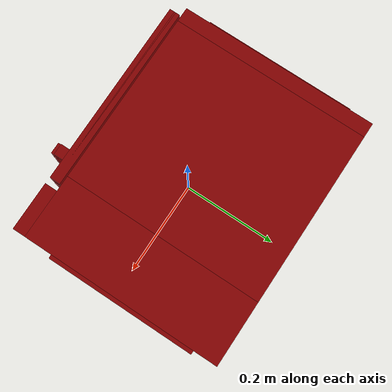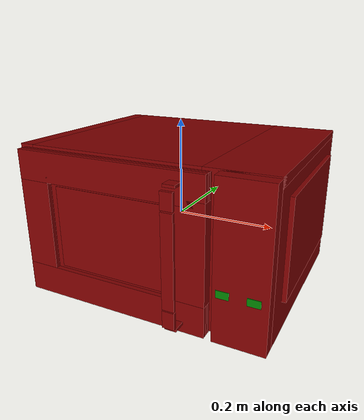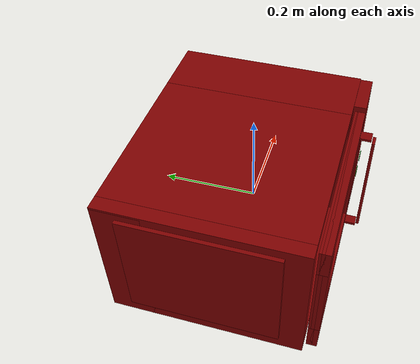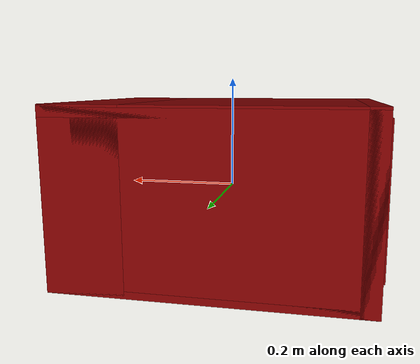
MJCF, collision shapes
<?xml version='1.0' encoding='UTF-8'?>
<mujoco model="model">
  <option timestep="0.002" gravity="0.0 0.0 -9.81"/>
  <compiler angle="radian"/>
  <asset>
    <mesh file="visuals/door.obj" name="door_vis"/>
    <mesh file="visuals/door_Clear.obj" name="door_Clear_vis"/>
    <mesh file="visuals/Body001.obj" name="Body001_vis"/>
    <mesh file="visuals/Disc001.obj" name="Disc001_vis"/>
    <texture file="visuals/T_BC001.png" name="Body001_material" type="2d"/>
    <material name="Body001_material" rgba="1 1 1 1.0" texture="Body001_material" shininess="0.2512328028678894" specular="2"/>
    <texture file="visuals/T_BC001.png" name="door_material" type="2d"/>
    <material name="door_material" rgba="1 1 1 1.0" texture="door_material" shininess="0.2512328028678894" specular="2"/>
    <texture file="visuals/T_BC001.png" name="door_Clear_material" type="2d"/>
    <material name="door_Clear_material" rgba="1 1 1 0.7292817831039429" texture="door_Clear_material" shininess="0.2512328028678894" specular="0.3103448502657381"/>
    <texture file="visuals/T_BC001.png" name="Disc001_material" type="2d"/>
    <material name="Disc001_material" rgba="1 1 1 1.0" texture="Disc001_material" shininess="0.2512328028678894" specular="1"/>
  </asset>
  <default>
    <default class="visual">
      <geom conaffinity="0" contype="0" group="1" type="mesh"/>
    </default>
    <default class="collision">
      <geom group="0" rgba="0.5 0 0 0.5"/>
    </default>
    <default class="spawn">
      <geom group="0" rgba="1 1 1 0.5" contype="0" conaffinity="0"/>
      <site group="0" rgba="1 1 1 0.5"/>
    </default>
    <default class="region">
      <geom group="1" conaffinity="0" contype="0" rgba="0 1 0 0"/>
    </default>
  </default>
  <worldbody>
    <body>
      <body name="object">
        <geom class="collision" type="box" pos="0.23700867593288422 -0.20612648129463196 -0.045173775404691696" size="0.01207912340760231 0.0005944836302660406 0.007133855484426022" quat="1.0 0.0 0.0 0.0" name="start_button" rgba="0.0 0.5 0 0.5"/>
        <geom class="collision" type="cylinder" pos="-0.050537459552288055 -0.025592748075723648 -0.1250721514225006" size="0.12531179189682007 0.0014801864745095372" quat="1.0 0.0 0.0 0.0" name="tray" rgba="0 1 0 0.5"/>
        <geom class="collision" type="box" pos="0.18167409300804138 -0.20612648129463196 -0.045173775404691696" size="0.012079129926860332 0.000594484037719667 0.007133858744055033" quat="1.0 0.0 0.0 0.0" name="stop_button" rgba="0.0 0.5 0 0.5"/>
        <geom mesh="Body001_vis" type="mesh" solimp="0.998 0.998 0.001" solref="0.001 1" friction="0.95 0.3 0.1" class="visual" material="Body001_material"/>
        <geom class="collision" type="box" pos="-0.24702182412147522 0.029452214017510414 0.007827463559806347" size="0.014996830374002457 0.2060273140668869 0.15224052965641022" quat="1.0 0.0 0.0 0.0"/>
        <geom class="collision" type="box" pos="0.19538173079490662 0.029452230781316757 0.007727399002760649" size="0.06638635694980621 0.2060273140668869 0.15234063565731049" quat="1.0 0.0 0.0 0.0"/>
        <geom class="collision" type="box" pos="0.00047238863771781325 0.029452214017510414 0.1501535326242447" size="0.26129570603370667 0.2060273140668869 0.009914008900523186" quat="1.0 0.0 0.0 0.0"/>
        <geom class="collision" type="box" pos="0.00047238863771781325 0.029452214017510414 -0.1382676512002945" size="0.26129570603370667 0.2060273140668869 0.006345600355416536" quat="1.0 0.0 0.0 0.0"/>
        <geom class="collision" type="box" pos="-0.028270823881030083 0.18598535656929016 0.00561020290479064" size="0.23374782502651215 0.04949415847659111 0.1502242535352707" quat="1.0 0.0 0.0 0.0"/>
        <geom class="collision" type="box" pos="0.21177542209625244 0.008883423171937466 0.006476628128439188" size="0.049992628395557404 0.21209710836410522 0.15107618272304535" quat="1.0 0.0 0.0 0.0"/>
        <geom class="collision" type="box" pos="0.22009512782096863 0.029442057013511658 0.018413254991173744" size="0.05025551840662956 0.1573123335838318 0.09686623513698578" quat="1.0 0.0 0.0 0.0"/>
        <geom class="collision" type="box" pos="-0.25484418869018555 0.029442057013511658 0.01651841402053833" size="0.015506747178733349 0.1573123335838318 0.12528879940509796" quat="1.0 0.0 0.0 0.0"/>
        <geom class="collision" type="box" pos="-0.1996823400259018 0.028583720326423645 -0.14840760827064514" size="0.029974456876516342 0.1610538363456726 0.003071777755394578" quat="1.0 0.0 0.0 0.0"/>
        <geom class="collision" type="box" pos="0.09970058500766754 0.028583720326423645 -0.14840760827064514" size="0.029974456876516342 0.1610538363456726 0.003071777755394578" quat="1.0 0.0 0.0 0.0"/>
        <geom class="collision" type="box" pos="0.1907329261302948 0.028583720326423645 -0.14840760827064514" size="0.03744519129395485 0.1610538363456726 0.003071777755394578" quat="1.0 0.0 0.0 0.0"/>
        <geom class="collision" type="cylinder" pos="-0.19858354330062866 0.14240029454231262 -0.1526230126619339" size="0.02202139049768448 0.0074449521489441395" quat="1.0 0.0 0.0 0.0"/>
        <geom class="collision" type="cylinder" pos="-0.19858354330062866 -0.08302761614322662 -0.1526230126619339" size="0.02202139049768448 0.0074449521489441395" quat="1.0 0.0 0.0 0.0"/>
        <geom class="collision" type="cylinder" pos="0.09968829154968262 -0.08302761614322662 -0.1526230126619339" size="0.02202139049768448 0.0074449521489441395" quat="1.0 0.0 0.0 0.0"/>
        <geom class="collision" type="cylinder" pos="0.09968829154968262 0.14240029454231262 -0.1526230126619339" size="0.02202139049768448 0.0074449521489441395" quat="1.0 0.0 0.0 0.0"/>
        <geom class="collision" type="cylinder" pos="0.19218270480632782 0.14240029454231262 -0.1526230126619339" size="0.02202139049768448 0.0074449521489441395" quat="1.0 0.0 0.0 0.0"/>
        <geom class="collision" type="cylinder" pos="0.19218270480632782 -0.08302761614322662 -0.1526230126619339" size="0.02202139049768448 0.0074449521489441395" quat="1.0 0.0 0.0 0.0"/>
        <body name="door">
          <joint axis="0.0 0.0 1.0" pos="-0.2489134818315506 -0.18977396190166473 0.0054132575169205666" limited="true" name="microjoint" range="-1.5707963267948966 0.0" type="hinge" damping="1" frictionloss="1" armature=".01" stiffness="0.05"/>
          <geom mesh="door_vis" type="mesh" solimp="0.998 0.998 0.001" solref="0.001 1" friction="0.95 0.3 0.1" class="visual" material="door_material"/>
          <geom class="collision" type="box" pos="-0.05106016993522644 -0.1927655190229416 0.0059278421103954315" size="0.11651831865310669 0.0013168689329177141 0.0836583599448204" quat="1.0 0.0 0.0 0.0"/>
          <geom class="collision" type="box" pos="-0.04843902215361595 -0.19217973947525024 0.12621673941612244" size="0.19647890329360962 0.011033985763788223 0.029617732390761375" quat="1.0 0.0 0.0 0.0"/>
          <geom class="collision" type="box" pos="-0.04843902215361595 -0.19217973947525024 -0.11273307353258133" size="0.19647890329360962 0.011033985763788223 0.030496425926685333" quat="1.0 0.0 0.0 0.0"/>
          <geom class="collision" type="box" pos="0.11066366732120514 -0.19217973947525024 0.012965724803507328" size="0.03744320943951607 0.011033985763788223 0.09520239382982254" quat="1.0 0.0 0.0 0.0"/>
          <geom class="collision" type="box" pos="-0.21185879409313202 -0.19217973947525024 0.012965724803507328" size="0.03298494964838028 0.011033985763788223 0.09520239382982254" quat="1.0 0.0 0.0 0.0"/>
          <geom class="collision" type="box" pos="0.09528375416994095 -0.23243282735347748 -0.10293573886156082" size="0.011605116538703442 0.0032406772952526808 0.016713906079530716" quat="1.0 0.0 0.0 0.0"/>
          <geom class="collision" type="box" pos="0.09528373181819916 -0.23243440687656403 0.11395150423049927" size="0.01160511840134859 0.0032406782265752554 0.016063852235674858" quat="1.0 0.0 0.0 0.0"/>
          <geom class="collision" type="box" pos="0.09528368711471558 -0.2135223150253296 0.13669836521148682" size="0.011605141684412956 0.01375391986221075 0.0025431187823414803" quat="1.0 0.0 0.0 0.0"/>
          <geom class="collision" type="box" pos="0.09557363390922546 -0.2138213962316513 -0.12493785470724106" size="0.011377131566405296 0.014053230173885822 0.002951518166810274" quat="1.0 0.0 0.0 0.0"/>
          <geom class="collision" type="box" pos="0.09528373926877975 -0.23243282735347748 0.005582104437053204" size="0.011605165898799896 0.003240696620196104 0.08945467323064804" quat="1.0 0.0 0.0 0.0" name="door_handle_main"/>
          <geom class="collision" type="box" pos="-0.04843902215361595 -0.18969404697418213 0.006458152551203966" size="0.19647890329360962 0.0035035230685025454 0.14937631785869598" quat="1.0 0.0 0.0 0.0" name="door_main"/>
          <body name="door_Clear">
            <geom mesh="door_Clear_vis" type="mesh" solimp="0.998 0.998 0.001" solref="0.001 1" friction="0.95 0.3 0.1" class="visual" material="door_Clear_material"/>
            <geom class="collision" type="box" pos="-0.05106016993522644 -0.1927655190229416 0.0059278421103954315" size="0.11651831865310669 0.0013168689329177141 0.0836583599448204" quat="1.0 0.0 0.0 0.0"/>
          </body>
        </body>
        <body name="Disc001">
          <joint axis="0.0 0.0 1.0" pos="-0.05053744837641716 -0.02559272199869156 -0.12647034227848053" limited="false" name="Disc001_joint" range="0 360" type="hinge" damping="1" frictionloss="1" armature=".01" stiffness="0.05"/>
          <geom mesh="Disc001_vis" type="mesh" solimp="0.998 0.998 0.001" solref="0.001 1" friction="0.95 0.3 0.1" class="visual" material="Disc001_material"/>
          <geom class="collision" type="cylinder" pos="-0.05053744837641716 -0.025592748075723648 -0.12945489585399628" size="0.12543006241321564 0.0009471718803979456" quat="1.0 0.0 0.0 0.0"/>
        </body>
        <geom class="region" name="reg_int" type="box" pos="-0.05056653544306755 -0.02025044709444046 0.0043897442519664764" size="0.17414717546105385 0.15039894527196884 0.12898163667321205"/>
        <geom class="region" name="reg_main" type="box" pos="0.0 0.016132889315485954 2.0764803210227e-08" size="0.2713509330749512 0.22034661269187927 0.16106800532341004"/>
      <geom class="region" name="reg_tray" type="cylinder" pos="-0.050537459552288055 -0.025592748075723648 0.004889707988593728" size="0.12531179189682007 0.1274816729365848"/></body>
    </body>
  </worldbody>
  <actuator>
    <motor name="microjoint_actuator" joint="microjoint" gear="10"/>
    <motor name="Disc001_joint_actuator" joint="Disc001_joint" gear="10"/>
  </actuator>
</mujoco>
